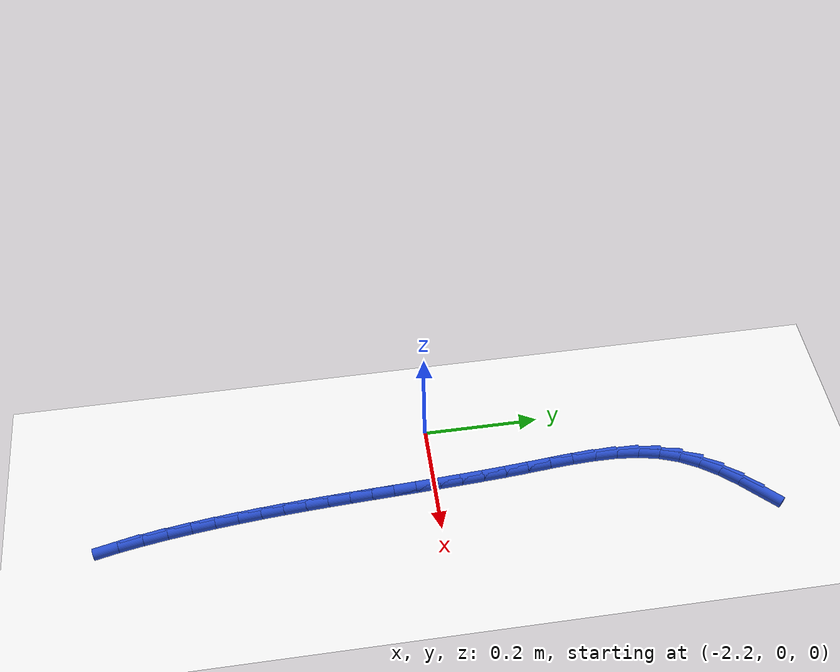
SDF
<sdf version="1.6">
 <world name="default">
  <model name="ground_plane">
   <static>1</static>
   <link name="link">
    <collision name="collision">
     <geometry><plane><normal>0 0 1</normal><size>100 100</size></plane></geometry>
     <surface><friction><ode><mu>100</mu><mu2>50</mu2></ode></friction></surface>
    </collision>
    <visual name="visual">
     <cast_shadows>0</cast_shadows>
     <geometry><plane><normal>0 0 1</normal><size>100 100</size></plane></geometry>
     <material>
      <script><uri>file://media/materials/scripts/gazebo.material</uri><name>Gazebo/WhiteGlow</name></script>
     </material>
    </visual>
   </link>
  </model>
  <model name="line">
   <link name="link_74">
    <pose>-1.988390370695667 0.5475869452700428 0.01 0 1.57 0.7929275164777811</pose>
    <collision name="collision">
     <geometry><cylinder><radius>0.01</radius><length>0.08</length></cylinder></geometry>
    </collision>
    <visual name="visual">
     <material>
      <script><name>Gazebo/Blue</name><uri>file://media/materials/scripts/gazebo.material</uri></script>
     </material>
     <geometry><cylinder><radius>0.01</radius><length>0.08</length></cylinder></geometry>
    </visual>
   </link>
   <link name="link_75">
    <pose>-2.0154993776386902 0.5200666069248163 0.01 0 1.57 0.8624872080030023</pose>
    <collision name="collision">
     <geometry><cylinder><radius>0.01</radius><length>0.08</length></cylinder></geometry>
    </collision>
    <visual name="visual">
     <material>
      <script><name>Gazebo/Blue</name><uri>file://media/materials/scripts/gazebo.material</uri></script>
     </material>
     <geometry><cylinder><radius>0.01</radius><length>0.08</length></cylinder></geometry>
    </visual>
   </link>
   <link name="link_76">
    <pose>-2.039985926175638 0.4914806238106607 0.01 0 1.57 0.9578713623461332</pose>
    <collision name="collision">
     <geometry><cylinder><radius>0.01</radius><length>0.08</length></cylinder></geometry>
    </collision>
    <visual name="visual">
     <material>
      <script><name>Gazebo/Blue</name><uri>file://media/materials/scripts/gazebo.material</uri></script>
     </material>
     <geometry><cylinder><radius>0.01</radius><length>0.08</length></cylinder></geometry>
    </visual>
   </link>
   <link name="link_77">
    <pose>-2.0611045209614605 0.46145197556227996 0.01 0 1.57 1.0803656682639418</pose>
    <collision name="collision">
     <geometry><cylinder><radius>0.01</radius><length>0.08</length></cylinder></geometry>
    </collision>
    <visual name="visual">
     <material>
      <script><name>Gazebo/Blue</name><uri>file://media/materials/scripts/gazebo.material</uri></script>
     </material>
     <geometry><cylinder><radius>0.01</radius><length>0.08</length></cylinder></geometry>
    </visual>
   </link>
   <link name="link_78">
    <pose>-2.078109666651104 0.4296036418143792 0.01 0 1.57 1.2268556267765456</pose>
    <collision name="collision">
     <geometry><cylinder><radius>0.01</radius><length>0.08</length></cylinder></geometry>
    </collision>
    <visual name="visual">
     <material>
      <script><name>Gazebo/Blue</name><uri>file://media/materials/scripts/gazebo.material</uri></script>
     </material>
     <geometry><cylinder><radius>0.01</radius><length>0.08</length></cylinder></geometry>
    </visual>
   </link>
   <link name="link_79">
    <pose>-2.090296357932082 0.3955794162204577 0.01 0 1.57 1.36713299781495</pose>
    <collision name="collision">
     <geometry><cylinder><radius>0.01</radius><length>0.08</length></cylinder></geometry>
    </collision>
    <visual name="visual">
     <material>
      <script><name>Gazebo/Blue</name><uri>file://media/materials/scripts/gazebo.material</uri></script>
     </material>
     <geometry><cylinder><radius>0.01</radius><length>0.08</length></cylinder></geometry>
    </visual>
   </link>
   <link name="link_80">
    <pose>-2.0977611213914074 0.35943512223405577 0.01 0 1.57 1.4765801598694082</pose>
    <collision name="collision">
     <geometry><cylinder><radius>0.01</radius><length>0.08</length></cylinder></geometry>
    </collision>
    <visual name="visual">
     <material>
      <script><name>Gazebo/Blue</name><uri>file://media/materials/scripts/gazebo.material</uri></script>
     </material>
     <geometry><cylinder><radius>0.01</radius><length>0.08</length></cylinder></geometry>
    </visual>
   </link>
   <link name="link_81">
    <pose>-2.101335947230257 0.3216046505148606 0.01 0 1.57 1.556869878805634</pose>
    <collision name="collision">
     <geometry><cylinder><radius>0.01</radius><length>0.08</length></cylinder></geometry>
    </collision>
    <visual name="visual">
     <material>
      <script><name>Gazebo/Blue</name><uri>file://media/materials/scripts/gazebo.material</uri></script>
     </material>
     <geometry><cylinder><radius>0.01</radius><length>0.08</length></cylinder></geometry>
    </visual>
   </link>
   <link name="link_82">
    <pose>-2.1018800713650054 0.2825358974615607 0.01 0 1.57 -1.5299916719682876</pose>
    <collision name="collision">
     <geometry><cylinder><radius>0.01</radius><length>0.08</length></cylinder></geometry>
    </collision>
    <visual name="visual">
     <material>
      <script><name>Gazebo/Blue</name><uri>file://media/materials/scripts/gazebo.material</uri></script>
     </material>
     <geometry><cylinder><radius>0.01</radius><length>0.08</length></cylinder></geometry>
    </visual>
   </link>
   <link name="link_83">
    <pose>-2.100252729712031 0.24267675947284428 0.01 0 1.57 -1.4978055157645205</pose>
    <collision name="collision">
     <geometry><cylinder><radius>0.01</radius><length>0.08</length></cylinder></geometry>
    </collision>
    <visual name="visual">
     <material>
      <script><name>Gazebo/Blue</name><uri>file://media/materials/scripts/gazebo.material</uri></script>
     </material>
     <geometry><cylinder><radius>0.01</radius><length>0.08</length></cylinder></geometry>
    </visual>
   </link>
   <link name="link_84">
    <pose>-2.097313158187709 0.2024751329474008 0.01 0 1.57 -1.4863867627978782</pose>
    <collision name="collision">
     <geometry><cylinder><radius>0.01</radius><length>0.08</length></cylinder></geometry>
    </collision>
    <visual name="visual">
     <material>
      <script><name>Gazebo/Blue</name><uri>file://media/materials/scripts/gazebo.material</uri></script>
     </material>
     <geometry><cylinder><radius>0.01</radius><length>0.08</length></cylinder></geometry>
    </visual>
   </link>
   <link name="link_85">
    <pose>-2.093920592708416 0.16237891428391815 0.01 0 1.57 -1.4929820782117122</pose>
    <collision name="collision">
     <geometry><cylinder><radius>0.01</radius><length>0.08</length></cylinder></geometry>
    </collision>
    <visual name="visual">
     <material>
      <script><name>Gazebo/Blue</name><uri>file://media/materials/scripts/gazebo.material</uri></script>
     </material>
     <geometry><cylinder><radius>0.01</radius><length>0.08</length></cylinder></geometry>
    </visual>
   </link>
   <link name="link_86">
    <pose>-2.090832916810699 0.12277895131382409 0.01 0 1.57 -1.5033492451438528</pose>
    <collision name="collision">
     <geometry><cylinder><radius>0.01</radius><length>0.08</length></cylinder></geometry>
    </collision>
    <visual name="visual">
     <material>
      <script><name>Gazebo/Blue</name><uri>file://media/materials/scripts/gazebo.material</uri></script>
     </material>
     <geometry><cylinder><radius>0.01</radius><length>0.08</length></cylinder></geometry>
    </visual>
   </link>
   <link name="link_87">
    <pose>-2.088194556049325 0.08372079263635888 0.01 0 1.57 -1.5119464342253217</pose>
    <collision name="collision">
     <geometry><cylinder><radius>0.01</radius><length>0.08</length></cylinder></geometry>
    </collision>
    <visual name="visual">
     <material>
      <script><name>Gazebo/Blue</name><uri>file://media/materials/scripts/gazebo.material</uri></script>
     </material>
     <geometry><cylinder><radius>0.01</radius><length>0.08</length></cylinder></geometry>
    </visual>
   </link>
   <link name="link_88">
    <pose>-2.0859203211955615 0.0451207427773353 0.01 0 1.57 -1.5186355857337472</pose>
    <collision name="collision">
     <geometry><cylinder><radius>0.01</radius><length>0.08</length></cylinder></geometry>
    </collision>
    <visual name="visual">
     <material>
      <script><name>Gazebo/Blue</name><uri>file://media/materials/scripts/gazebo.material</uri></script>
     </material>
     <geometry><cylinder><radius>0.01</radius><length>0.08</length></cylinder></geometry>
    </visual>
   </link>
   <link name="link_89">
    <pose>-2.083924621625641 0.006894880327945812 0.01 0 1.57 -1.5233105913108849</pose>
    <collision name="collision">
     <geometry><cylinder><radius>0.01</radius><length>0.08</length></cylinder></geometry>
    </collision>
    <visual name="visual">
     <material>
      <script><name>Gazebo/Blue</name><uri>file://media/materials/scripts/gazebo.material</uri></script>
     </material>
     <geometry><cylinder><radius>0.01</radius><length>0.08</length></cylinder></geometry>
    </visual>
   </link>
   <link name="link_90">
    <pose>-2.082121866715797 -0.031040716120618178 0.01 0 1.57 -1.5258905566286178</pose>
    <collision name="collision">
     <geometry><cylinder><radius>0.01</radius><length>0.08</length></cylinder></geometry>
    </collision>
    <visual name="visual">
     <material>
      <script><name>Gazebo/Blue</name><uri>file://media/materials/scripts/gazebo.material</uri></script>
     </material>
     <geometry><cylinder><radius>0.01</radius><length>0.08</length></cylinder></geometry>
    </visual>
   </link>
   <link name="link_91">
    <pose>-2.080426465842261 -0.0687699679771649 0.01 0 1.57 -1.5263221205247492</pose>
    <collision name="collision">
     <geometry><cylinder><radius>0.01</radius><length>0.08</length></cylinder></geometry>
    </collision>
    <visual name="visual">
     <material>
      <script><name>Gazebo/Blue</name><uri>file://media/materials/scripts/gazebo.material</uri></script>
     </material>
     <geometry><cylinder><radius>0.01</radius><length>0.08</length></cylinder></geometry>
    </visual>
   </link>
   <link name="link_92">
    <pose>-2.0787528283812686 -0.10637679665050334 0.01 0 1.57 -1.524581132912685</pose>
    <collision name="collision">
     <geometry><cylinder><radius>0.01</radius><length>0.08</length></cylinder></geometry>
    </collision>
    <visual name="visual">
     <material>
      <script><name>Gazebo/Blue</name><uri>file://media/materials/scripts/gazebo.material</uri></script>
     </material>
     <geometry><cylinder><radius>0.01</radius><length>0.08</length></cylinder></geometry>
    </visual>
   </link>
   <link name="link_93">
    <pose>-2.0770153637090516 -0.14394512354944022 0.01 0 1.57 -1.5206736379364598</pose>
    <collision name="collision">
     <geometry><cylinder><radius>0.01</radius><length>0.08</length></cylinder></geometry>
    </collision>
    <visual name="visual">
     <material>
      <script><name>Gazebo/Blue</name><uri>file://media/materials/scripts/gazebo.material</uri></script>
     </material>
     <geometry><cylinder><radius>0.01</radius><length>0.08</length></cylinder></geometry>
    </visual>
   </link>
   <link name="link_94">
    <pose>-2.075128481201843 -0.18155887008278454 0.01 0 1.57 -1.5146361173365968</pose>
    <collision name="collision">
     <geometry><cylinder><radius>0.01</radius><length>0.08</length></cylinder></geometry>
    </collision>
    <visual name="visual">
     <material>
      <script><name>Gazebo/Blue</name><uri>file://media/materials/scripts/gazebo.material</uri></script>
     </material>
     <geometry><cylinder><radius>0.01</radius><length>0.08</length></cylinder></geometry>
    </visual>
   </link>
   <link name="link_95">
    <pose>-2.0730065902358774 -0.21930195765934457 0.01 0 1.57 -1.5065349577756608</pose>
    <collision name="collision">
     <geometry><cylinder><radius>0.01</radius><length>0.08</length></cylinder></geometry>
    </collision>
    <visual name="visual">
     <material>
      <script><name>Gazebo/Blue</name><uri>file://media/materials/scripts/gazebo.material</uri></script>
     </material>
     <geometry><cylinder><radius>0.01</radius><length>0.08</length></cylinder></geometry>
    </visual>
   </link>
   <link name="link_96">
    <pose>-2.070564100187386 -0.25725830768792846 0.01 0 1.57 -1.496465118887048</pose>
    <collision name="collision">
     <geometry><cylinder><radius>0.01</radius><length>0.08</length></cylinder></geometry>
    </collision>
    <visual name="visual">
     <material>
      <script><name>Gazebo/Blue</name><uri>file://media/materials/scripts/gazebo.material</uri></script>
     </material>
     <geometry><cylinder><radius>0.01</radius><length>0.08</length></cylinder></geometry>
    </visual>
   </link>
   <link name="link_97">
    <pose>-2.067715420432603 -0.2955118415773445 0.01 0 1.57 -1.4845479996208666</pose>
    <collision name="collision">
     <geometry><cylinder><radius>0.01</radius><length>0.08</length></cylinder></geometry>
    </collision>
    <visual name="visual">
     <material>
      <script><name>Gazebo/Blue</name><uri>file://media/materials/scripts/gazebo.material</uri></script>
     </material>
     <geometry><cylinder><radius>0.01</radius><length>0.08</length></cylinder></geometry>
    </visual>
   </link>
   <link name="link_98">
    <pose>-2.0643749603477617 -0.33414648073640163 0.01 0 1.57 -1.470928531070881</pose>
    <collision name="collision">
     <geometry><cylinder><radius>0.01</radius><length>0.08</length></cylinder></geometry>
    </collision>
    <visual name="visual">
     <material>
      <script><name>Gazebo/Blue</name><uri>file://media/materials/scripts/gazebo.material</uri></script>
     </material>
     <geometry><cylinder><radius>0.01</radius><length>0.08</length></cylinder></geometry>
    </visual>
   </link>
   <link name="link_99">
    <pose>-2.060457129309095 -0.37324614657390665 0.01 0 1.57 -1.4557715638937778</pose>
    <collision name="collision">
     <geometry><cylinder><radius>0.01</radius><length>0.08</length></cylinder></geometry>
    </collision>
    <visual name="visual">
     <material>
      <script><name>Gazebo/Blue</name><uri>file://media/materials/scripts/gazebo.material</uri></script>
     </material>
     <geometry><cylinder><radius>0.01</radius><length>0.08</length></cylinder></geometry>
    </visual>
   </link>
   <link name="link_100">
    <pose>-2.055876336692836 -0.4128947604986686 0.01 0 1.57 -1.4392576643449153</pose>
    <collision name="collision">
     <geometry><cylinder><radius>0.01</radius><length>0.08</length></cylinder></geometry>
    </collision>
    <visual name="visual">
     <material>
      <script><name>Gazebo/Blue</name><uri>file://media/materials/scripts/gazebo.material</uri></script>
     </material>
     <geometry><cylinder><radius>0.01</radius><length>0.08</length></cylinder></geometry>
    </visual>
   </link>
   <link name="link_101">
    <pose>-2.050546991875217 -0.4531762439194954 0.01 0 1.57 -1.4203932066248008</pose>
    <collision name="collision">
     <geometry><cylinder><radius>0.01</radius><length>0.08</length></cylinder></geometry>
    </collision>
    <visual name="visual">
     <material>
      <script><name>Gazebo/Blue</name><uri>file://media/materials/scripts/gazebo.material</uri></script>
     </material>
     <geometry><cylinder><radius>0.01</radius><length>0.08</length></cylinder></geometry>
    </visual>
   </link>
   <link name="link_102">
    <pose>-2.0443477010375597 -0.4940828106230783 0.01 0 1.57 -1.3931898914570953</pose>
    <collision name="collision">
     <geometry><cylinder><radius>0.01</radius><length>0.08</length></cylinder></geometry>
    </collision>
    <visual name="visual">
     <material>
      <script><name>Gazebo/Blue</name><uri>file://media/materials/scripts/gazebo.material</uri></script>
     </material>
     <geometry><cylinder><radius>0.01</radius><length>0.08</length></cylinder></geometry>
    </visual>
   </link>
   <link name="link_103">
    <pose>-2.036977034999628 -0.5351455251901341 0.01 0 1.57 -1.3550267135455292</pose>
    <collision name="collision">
     <geometry><cylinder><radius>0.01</radius><length>0.08</length></cylinder></geometry>
    </collision>
    <visual name="visual">
     <material>
      <script><name>Gazebo/Blue</name><uri>file://media/materials/scripts/gazebo.material</uri></script>
     </material>
     <geometry><cylinder><radius>0.01</radius><length>0.08</length></cylinder></geometry>
    </visual>
   </link>
  </model>
 </world>
</sdf>
